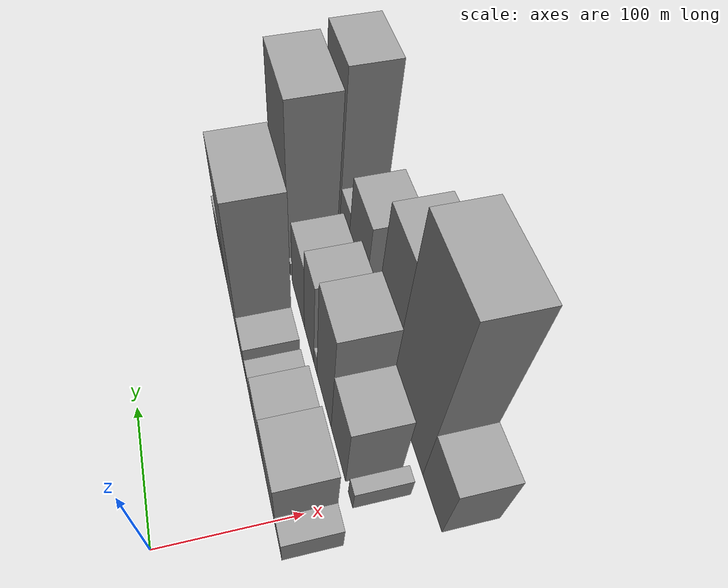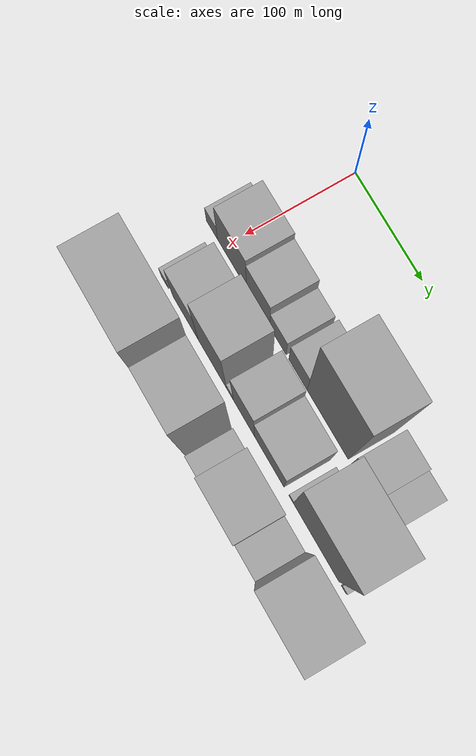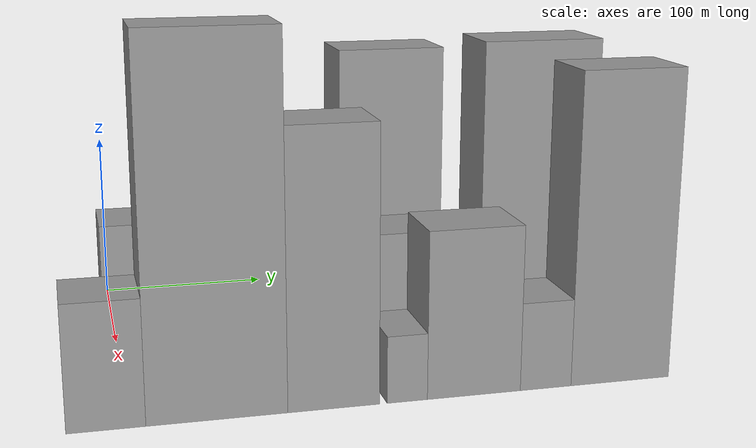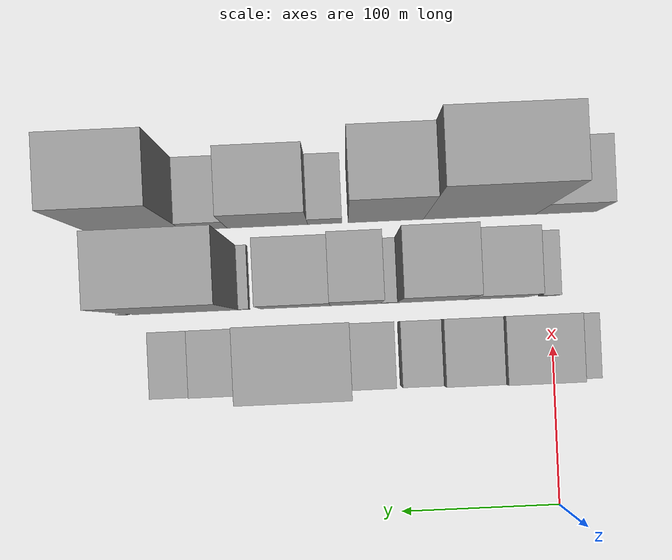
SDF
<sdf version="1.6">
 <world name="default">
  <model name="building_15">
   <static>1</static>
   <pose>100.0000 -16.0069 0 0.000000 0.000000 0.000000</pose>
   <link name="link">
    <pose>0 0 15.00 0 0 0</pose>
    <collision name="collision"><geometry><box><size>40.0000 17.6644 30.0000</size></box></geometry></collision>
    <visual name="visual">
     <cast_shadows>0</cast_shadows>
     <geometry><box><size>40.0000 17.6644 30.0000</size></box></geometry>
     <material>
      <script>
       <uri>model://grey_wall/materials/scripts</uri>
       <uri>model://grey_wall/materials/textures</uri>
       <name>vrc/grey_wall</name>
      </script>
     </material>
    </visual>
   </link>
  </model>
  <model name="building_16">
   <static>1</static>
   <pose>100.0000 15.2583 0 0.000000 0.000000 0.000000</pose>
   <link name="link">
    <pose>0 0 37.50 0 0 0</pose>
    <collision name="collision"><geometry><box><size>40.0000 44.8660 75.0000</size></box></geometry></collision>
    <visual name="visual">
     <cast_shadows>0</cast_shadows>
     <geometry><box><size>40.0000 44.8660 75.0000</size></box></geometry>
     <material>
      <script>
       <uri>model://grey_wall/materials/scripts</uri>
       <uri>model://grey_wall/materials/textures</uri>
       <name>vrc/grey_wall</name>
      </script>
     </material>
    </visual>
   </link>
  </model>
  <model name="building_17">
   <static>1</static>
   <pose>100.0000 55.1957 0 0.000000 0.000000 0.000000</pose>
   <link name="link">
    <pose>0 0 31.50 0 0 0</pose>
    <collision name="collision"><geometry><box><size>40.0000 35.0089 63.0000</size></box></geometry></collision>
    <visual name="visual">
     <cast_shadows>0</cast_shadows>
     <geometry><box><size>40.0000 35.0089 63.0000</size></box></geometry>
     <material>
      <script>
       <uri>model://grey_wall/materials/scripts</uri>
       <uri>model://grey_wall/materials/textures</uri>
       <name>vrc/grey_wall</name>
      </script>
     </material>
    </visual>
   </link>
  </model>
  <model name="building_18">
   <static>1</static>
   <pose>100.0000 85.0959 0 0.000000 0.000000 0.000000</pose>
   <link name="link">
    <pose>0 0 21.00 0 0 0</pose>
    <collision name="collision"><geometry><box><size>40.0000 24.7916 42.0000</size></box></geometry></collision>
    <visual name="visual">
     <cast_shadows>0</cast_shadows>
     <geometry><box><size>40.0000 24.7916 42.0000</size></box></geometry>
     <material>
      <script>
       <uri>model://grey_wall/materials/scripts</uri>
       <uri>model://grey_wall/materials/textures</uri>
       <name>vrc/grey_wall</name>
      </script>
     </material>
    </visual>
   </link>
  </model>
  <model name="building_19">
   <static>1</static>
   <pose>100.0000 115.1300 0 0.000000 0.000000 0.000000</pose>
   <link name="link">
    <pose>0 0 24.00 0 0 0</pose>
    <collision name="collision"><geometry><box><size>40.0000 27.2765 48.0000</size></box></geometry></collision>
    <visual name="visual">
     <cast_shadows>0</cast_shadows>
     <geometry><box><size>40.0000 27.2765 48.0000</size></box></geometry>
     <material>
      <script>
       <uri>model://grey_wall/materials/scripts</uri>
       <uri>model://grey_wall/materials/textures</uri>
       <name>vrc/grey_wall</name>
      </script>
     </material>
    </visual>
   </link>
  </model>
  <model name="building_20">
   <static>1</static>
   <pose>100.0000 159.0901 0 0.000000 0.000000 0.000000</pose>
   <link name="link">
    <pose>0 0 84.00 0 0 0</pose>
    <collision name="collision"><geometry><box><size>40.0000 60.6438 168.0000</size></box></geometry></collision>
    <visual name="visual">
     <cast_shadows>0</cast_shadows>
     <geometry><box><size>40.0000 60.6438 168.0000</size></box></geometry>
     <material>
      <script>
       <uri>model://grey_wall/materials/scripts</uri>
       <uri>model://grey_wall/materials/textures</uri>
       <name>vrc/grey_wall</name>
      </script>
     </material>
    </visual>
   </link>
  </model>
  <model name="building_21">
   <static>1</static>
   <pose>100.0000 209.4794 0 0.000000 0.000000 0.000000</pose>
   <link name="link">
    <pose>0 0 27.00 0 0 0</pose>
    <collision name="collision"><geometry><box><size>40.0000 32.1349 54.0000</size></box></geometry></collision>
    <visual name="visual">
     <cast_shadows>0</cast_shadows>
     <geometry><box><size>40.0000 32.1349 54.0000</size></box></geometry>
     <material>
      <script>
       <uri>model://grey_wall/materials/scripts</uri>
       <uri>model://grey_wall/materials/textures</uri>
       <name>vrc/grey_wall</name>
      </script>
     </material>
    </visual>
   </link>
  </model>
  <model name="building_22">
   <static>1</static>
   <pose>100.0000 237.7164 0 0.000000 0.000000 0.000000</pose>
   <link name="link">
    <pose>0 0 22.50 0 0 0</pose>
    <collision name="collision"><geometry><box><size>40.0000 24.3390 45.0000</size></box></geometry></collision>
    <visual name="visual">
     <cast_shadows>0</cast_shadows>
     <geometry><box><size>40.0000 24.3390 45.0000</size></box></geometry>
     <material>
      <script>
       <uri>model://grey_wall/materials/scripts</uri>
       <uri>model://grey_wall/materials/textures</uri>
       <name>vrc/grey_wall</name>
      </script>
     </material>
    </visual>
   </link>
  </model>
  <model name="building_46">
   <static>1</static>
   <pose>152.0000 2.1023 0 0.000000 0.000000 0.000000</pose>
   <link name="link">
    <pose>0 0 12.00 0 0 0</pose>
    <collision name="collision"><geometry><box><size>40.0000 11.1633 24.0000</size></box></geometry></collision>
    <visual name="visual">
     <cast_shadows>0</cast_shadows>
     <geometry><box><size>40.0000 11.1633 24.0000</size></box></geometry>
     <material>
      <script>
       <uri>model://grey_wall/materials/scripts</uri>
       <uri>model://grey_wall/materials/textures</uri>
       <name>vrc/grey_wall</name>
      </script>
     </material>
    </visual>
   </link>
  </model>
  <model name="building_47">
   <static>1</static>
   <pose>152.0000 34.5308 0 0.000000 0.000000 0.000000</pose>
   <link name="link">
    <pose>0 0 37.50 0 0 0</pose>
    <collision name="collision"><geometry><box><size>40.0000 39.6936 75.0000</size></box></geometry></collision>
    <visual name="visual">
     <cast_shadows>0</cast_shadows>
     <geometry><box><size>40.0000 39.6936 75.0000</size></box></geometry>
     <material>
      <script>
       <uri>model://grey_wall/materials/scripts</uri>
       <uri>model://grey_wall/materials/textures</uri>
       <name>vrc/grey_wall</name>
      </script>
     </material>
    </visual>
   </link>
  </model>
  <model name="building_48">
   <static>1</static>
   <pose>152.0000 76.0348 0 0.000000 0.000000 0.000000</pose>
   <link name="link">
    <pose>0 0 58.50 0 0 0</pose>
    <collision name="collision"><geometry><box><size>40.0000 43.3143 117.0000</size></box></geometry></collision>
    <visual name="visual">
     <cast_shadows>0</cast_shadows>
     <geometry><box><size>40.0000 43.3143 117.0000</size></box></geometry>
     <material>
      <script>
       <uri>model://grey_wall/materials/scripts</uri>
       <uri>model://grey_wall/materials/textures</uri>
       <name>vrc/grey_wall</name>
      </script>
     </material>
    </visual>
   </link>
  </model>
  <model name="building_49">
   <static>1</static>
   <pose>152.0000 102.7331 0 0.000000 0.000000 0.000000</pose>
   <link name="link">
    <pose>0 0 10.50 0 0 0</pose>
    <collision name="collision"><geometry><box><size>40.0000 10.0823 21.0000</size></box></geometry></collision>
    <visual name="visual">
     <cast_shadows>0</cast_shadows>
     <geometry><box><size>40.0000 10.0823 21.0000</size></box></geometry>
     <material>
      <script>
       <uri>model://grey_wall/materials/scripts</uri>
       <uri>model://grey_wall/materials/textures</uri>
       <name>vrc/grey_wall</name>
      </script>
     </material>
    </visual>
   </link>
  </model>
  <model name="building_50">
   <static>1</static>
   <pose>152.0000 123.5768 0 0.000000 0.000000 0.000000</pose>
   <link name="link">
    <pose>0 0 48.00 0 0 0</pose>
    <collision name="collision"><geometry><box><size>40.0000 31.6051 96.0000</size></box></geometry></collision>
    <visual name="visual">
     <cast_shadows>0</cast_shadows>
     <geometry><box><size>40.0000 31.6051 96.0000</size></box></geometry>
     <material>
      <script>
       <uri>model://grey_wall/materials/scripts</uri>
       <uri>model://grey_wall/materials/textures</uri>
       <name>vrc/grey_wall</name>
      </script>
     </material>
    </visual>
   </link>
  </model>
  <model name="building_51">
   <static>1</static>
   <pose>152.0000 161.2680 0 0.000000 0.000000 0.000000</pose>
   <link name="link">
    <pose>0 0 37.50 0 0 0</pose>
    <collision name="collision"><geometry><box><size>40.0000 43.7773 75.0000</size></box></geometry></collision>
    <visual name="visual">
     <cast_shadows>0</cast_shadows>
     <geometry><box><size>40.0000 43.7773 75.0000</size></box></geometry>
     <material>
      <script>
       <uri>model://grey_wall/materials/scripts</uri>
       <uri>model://grey_wall/materials/textures</uri>
       <name>vrc/grey_wall</name>
      </script>
     </material>
    </visual>
   </link>
  </model>
  <model name="building_52">
   <static>1</static>
   <pose>152.0000 193.4115 0 0.000000 0.000000 0.000000</pose>
   <link name="link">
    <pose>0 0 7.50 0 0 0</pose>
    <collision name="collision"><geometry><box><size>40.0000 6.5098 15.0000</size></box></geometry></collision>
    <visual name="visual">
     <cast_shadows>0</cast_shadows>
     <geometry><box><size>40.0000 6.5098 15.0000</size></box></geometry>
     <material>
      <script>
       <uri>model://grey_wall/materials/scripts</uri>
       <uri>model://grey_wall/materials/textures</uri>
       <name>vrc/grey_wall</name>
      </script>
     </material>
    </visual>
   </link>
  </model>
  <model name="building_53">
   <static>1</static>
   <pose>152.0000 229.8781 0 0.000000 0.000000 0.000000</pose>
   <link name="link">
    <pose>0 0 88.50 0 0 0</pose>
    <collision name="collision"><geometry><box><size>40.0000 66.4234 177.0000</size></box></geometry></collision>
    <visual name="visual">
     <cast_shadows>0</cast_shadows>
     <geometry><box><size>40.0000 66.4234 177.0000</size></box></geometry>
     <material>
      <script>
       <uri>model://grey_wall/materials/scripts</uri>
       <uri>model://grey_wall/materials/textures</uri>
       <name>vrc/grey_wall</name>
      </script>
     </material>
    </visual>
   </link>
  </model>
  <model name="building_54">
   <static>1</static>
   <pose>152.0000 269.5654 0 0.000000 0.000000 0.000000</pose>
   <link name="link">
    <pose>0 0 7.50 0 0 0</pose>
    <collision name="collision"><geometry><box><size>40.0000 6.9513 15.0000</size></box></geometry></collision>
    <visual name="visual">
     <cast_shadows>0</cast_shadows>
     <geometry><box><size>40.0000 6.9513 15.0000</size></box></geometry>
     <material>
      <script>
       <uri>model://grey_wall/materials/scripts</uri>
       <uri>model://grey_wall/materials/textures</uri>
       <name>vrc/grey_wall</name>
      </script>
     </material>
    </visual>
   </link>
  </model>
  <model name="building_81">
   <static>1</static>
   <pose>204.0000 -12.0352 0 0.000000 0.000000 0.000000</pose>
   <link name="link">
    <pose>0 0 33.00 0 0 0</pose>
    <collision name="collision"><geometry><box><size>40.0000 38.4797 66.0000</size></box></geometry></collision>
    <visual name="visual">
     <cast_shadows>0</cast_shadows>
     <geometry><box><size>40.0000 38.4797 66.0000</size></box></geometry>
     <material>
      <script>
       <uri>model://grey_wall/materials/scripts</uri>
       <uri>model://grey_wall/materials/textures</uri>
       <name>vrc/grey_wall</name>
      </script>
     </material>
    </visual>
   </link>
  </model>
  <model name="building_82">
   <static>1</static>
   <pose>204.0000 42.6563 0 0.000000 0.000000 0.000000</pose>
   <link name="link">
    <pose>0 0 97.50 0 0 0</pose>
    <collision name="collision"><geometry><box><size>40.0000 70.9034 195.0000</size></box></geometry></collision>
    <visual name="visual">
     <cast_shadows>0</cast_shadows>
     <geometry><box><size>40.0000 70.9034 195.0000</size></box></geometry>
     <material>
      <script>
       <uri>model://grey_wall/materials/scripts</uri>
       <uri>model://grey_wall/materials/textures</uri>
       <name>vrc/grey_wall</name>
      </script>
     </material>
    </visual>
   </link>
  </model>
  <model name="building_83">
   <static>1</static>
   <pose>204.0000 101.9521 0 0.000000 0.000000 0.000000</pose>
   <link name="link">
    <pose>0 0 73.50 0 0 0</pose>
    <collision name="collision"><geometry><box><size>40.0000 47.6880 147.0000</size></box></geometry></collision>
    <visual name="visual">
     <cast_shadows>0</cast_shadows>
     <geometry><box><size>40.0000 47.6880 147.0000</size></box></geometry>
     <material>
      <script>
       <uri>model://grey_wall/materials/scripts</uri>
       <uri>model://grey_wall/materials/textures</uri>
       <name>vrc/grey_wall</name>
      </script>
     </material>
    </visual>
   </link>
  </model>
  <model name="building_84">
   <static>1</static>
   <pose>204.0000 140.5550 0 0.000000 0.000000 0.000000</pose>
   <link name="link">
    <pose>0 0 18.00 0 0 0</pose>
    <collision name="collision"><geometry><box><size>40.0000 21.5179 36.0000</size></box></geometry></collision>
    <visual name="visual">
     <cast_shadows>0</cast_shadows>
     <geometry><box><size>40.0000 21.5179 36.0000</size></box></geometry>
     <material>
      <script>
       <uri>model://grey_wall/materials/scripts</uri>
       <uri>model://grey_wall/materials/textures</uri>
       <name>vrc/grey_wall</name>
      </script>
     </material>
    </visual>
   </link>
  </model>
  <model name="building_85">
   <static>1</static>
   <pose>204.0000 176.7518 0 0.000000 0.000000 0.000000</pose>
   <link name="link">
    <pose>0 0 45.00 0 0 0</pose>
    <collision name="collision"><geometry><box><size>40.0000 50.8758 90.0000</size></box></geometry></collision>
    <visual name="visual">
     <cast_shadows>0</cast_shadows>
     <geometry><box><size>40.0000 50.8758 90.0000</size></box></geometry>
     <material>
      <script>
       <uri>model://grey_wall/materials/scripts</uri>
       <uri>model://grey_wall/materials/textures</uri>
       <name>vrc/grey_wall</name>
      </script>
     </material>
    </visual>
   </link>
  </model>
  <model name="building_86">
   <static>1</static>
   <pose>204.0000 216.4334 0 0.000000 0.000000 0.000000</pose>
   <link name="link">
    <pose>0 0 24.00 0 0 0</pose>
    <collision name="collision"><geometry><box><size>40.0000 28.4873 48.0000</size></box></geometry></collision>
    <visual name="visual">
     <cast_shadows>0</cast_shadows>
     <geometry><box><size>40.0000 28.4873 48.0000</size></box></geometry>
     <material>
      <script>
       <uri>model://grey_wall/materials/scripts</uri>
       <uri>model://grey_wall/materials/textures</uri>
       <name>vrc/grey_wall</name>
      </script>
     </material>
    </visual>
   </link>
  </model>
  <model name="building_87">
   <static>1</static>
   <pose>204.0000 258.8152 0 0.000000 0.000000 0.000000</pose>
   <link name="link">
    <pose>0 0 84.00 0 0 0</pose>
    <collision name="collision"><geometry><box><size>40.0000 56.2763 168.0000</size></box></geometry></collision>
    <visual name="visual">
     <cast_shadows>0</cast_shadows>
     <geometry><box><size>40.0000 56.2763 168.0000</size></box></geometry>
     <material>
      <script>
       <uri>model://grey_wall/materials/scripts</uri>
       <uri>model://grey_wall/materials/textures</uri>
       <name>vrc/grey_wall</name>
      </script>
     </material>
    </visual>
   </link>
  </model>
 </world>
</sdf>
